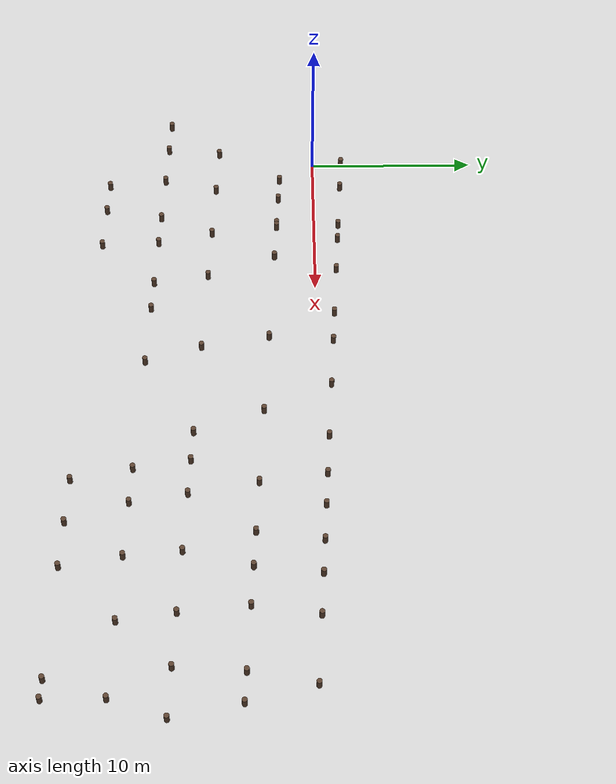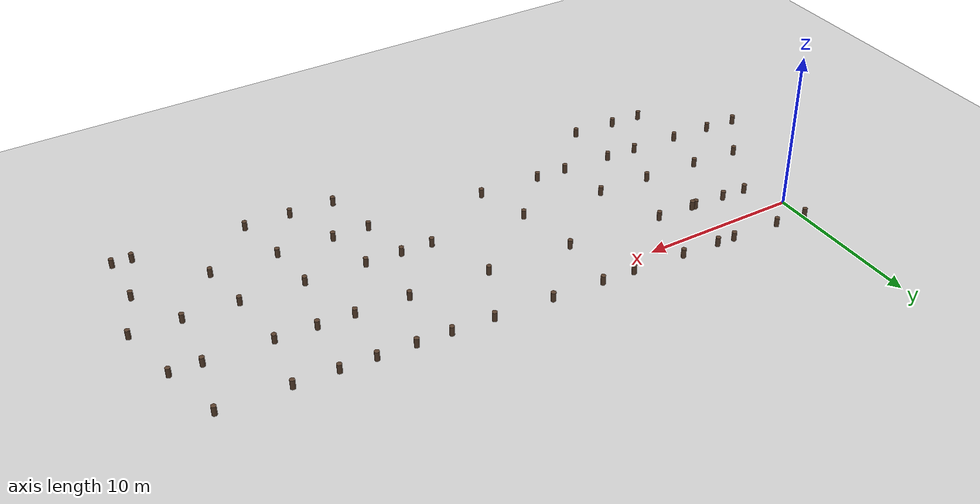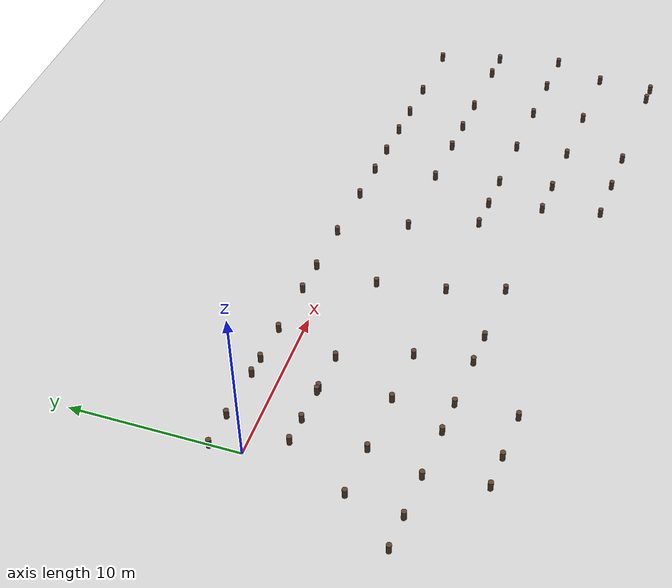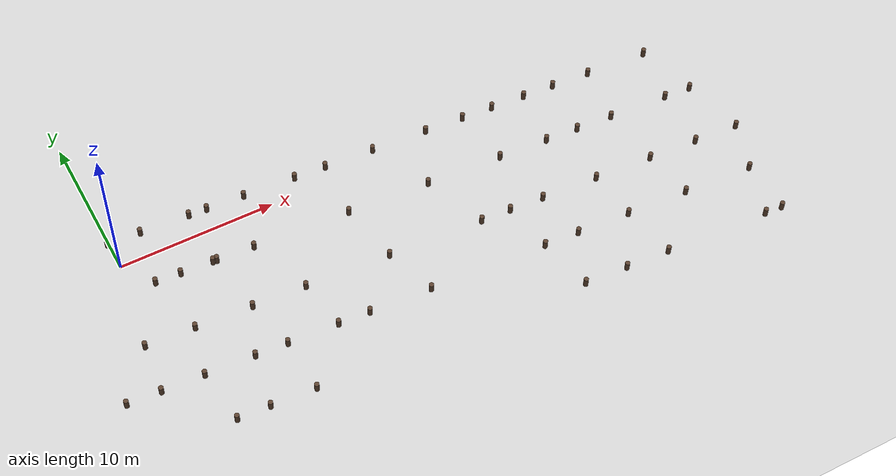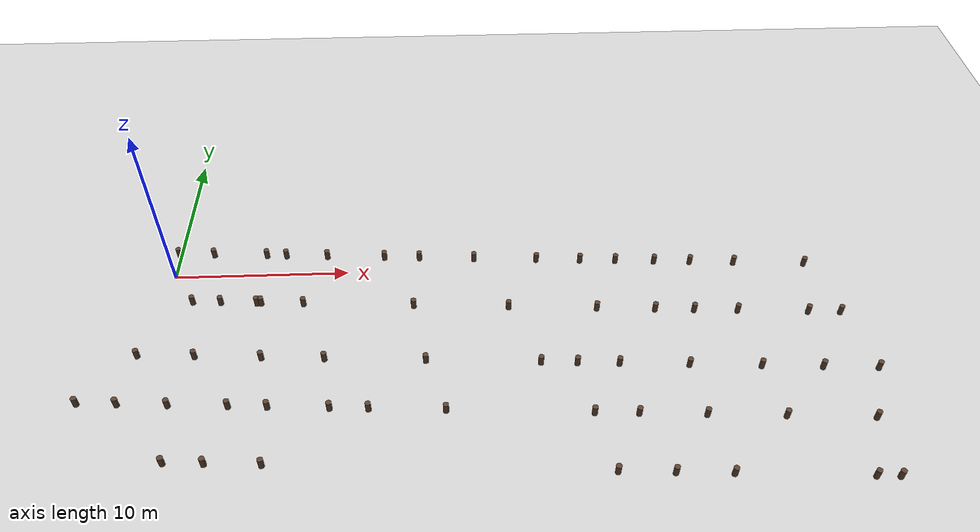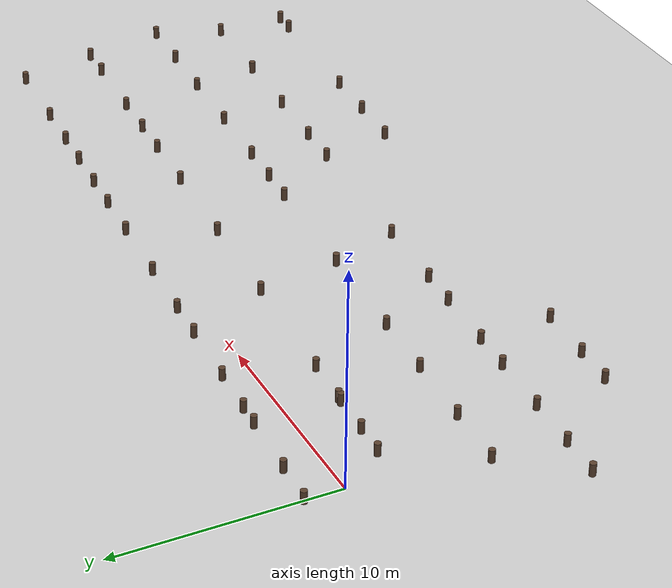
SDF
<?xml version="1.0"?>
<sdf version="1.6">
  <world name="orchard_world">
    <include>
      <uri>model://sun</uri>
    </include>

    <include>
      <uri>model://ground_plane</uri>
    </include>

    <!-- Trees: 61 includes of model://tree_trunk -->
    <include>
      <uri>model://tree_trunk</uri>
      <name>tree_0000</name>
      <pose>37.405994 -14.860530 0 0 0 0</pose>
    </include>
    <include>
      <uri>model://tree_trunk</uri>
      <name>tree_0001</name>
      <pose>36.251740 -14.794788 0 0 0 0</pose>
    </include>
    <include>
      <uri>model://tree_trunk</uri>
      <name>tree_0002</name>
      <pose>29.473898 -14.408754 0 0 0 0</pose>
    </include>
    <include>
      <uri>model://tree_trunk</uri>
      <name>tree_0003</name>
      <pose>26.651340 -14.247994 0 0 0 0</pose>
    </include>
    <include>
      <uri>model://tree_trunk</uri>
      <name>tree_0004</name>
      <pose>23.872522 -14.089725 0 0 0 0</pose>
    </include>
    <include>
      <uri>model://tree_trunk</uri>
      <name>tree_0005</name>
      <pose>6.632353 -13.107804 0 0 0 0</pose>
    </include>
    <include>
      <uri>model://tree_trunk</uri>
      <name>tree_0006</name>
      <pose>3.813157 -12.947236 0 0 0 0</pose>
    </include>
    <include>
      <uri>model://tree_trunk</uri>
      <name>tree_0007</name>
      <pose>1.792529 -12.832150 0 0 0 0</pose>
    </include>
    <include>
      <uri>model://tree_trunk</uri>
      <name>tree_0008</name>
      <pose>37.391811 -11.390374 0 0 0 0</pose>
    </include>
    <include>
      <uri>model://tree_trunk</uri>
      <name>tree_0009</name>
      <pose>32.862915 -11.132429 0 0 0 0</pose>
    </include>
    <include>
      <uri>model://tree_trunk</uri>
      <name>tree_0010</name>
      <pose>28.853966 -10.904098 0 0 0 0</pose>
    </include>
    <include>
      <uri>model://tree_trunk</uri>
      <name>tree_0011</name>
      <pose>25.411882 -10.708053 0 0 0 0</pose>
    </include>
    <include>
      <uri>model://tree_trunk</uri>
      <name>tree_0012</name>
      <pose>23.157860 -10.579674 0 0 0 0</pose>
    </include>
    <include>
      <uri>model://tree_trunk</uri>
      <name>tree_0013</name>
      <pose>15.610937 -10.149836 0 0 0 0</pose>
    </include>
    <include>
      <uri>model://tree_trunk</uri>
      <name>tree_0014</name>
      <pose>11.653235 -9.924423 0 0 0 0</pose>
    </include>
    <include>
      <uri>model://tree_trunk</uri>
      <name>tree_0015</name>
      <pose>9.662840 -9.811059 0 0 0 0</pose>
    </include>
    <include>
      <uri>model://tree_trunk</uri>
      <name>tree_0016</name>
      <pose>6.479774 -9.629766 0 0 0 0</pose>
    </include>
    <include>
      <uri>model://tree_trunk</uri>
      <name>tree_0017</name>
      <pose>4.461401 -9.514809 0 0 0 0</pose>
    </include>
    <include>
      <uri>model://tree_trunk</uri>
      <name>tree_0018</name>
      <pose>1.370597 -9.338771 0 0 0 0</pose>
    </include>
    <include>
      <uri>model://tree_trunk</uri>
      <name>tree_0019</name>
      <pose>-1.253677 -9.189304 0 0 0 0</pose>
    </include>
    <include>
      <uri>model://tree_trunk</uri>
      <name>tree_0020</name>
      <pose>-3.334988 -9.070763 0 0 0 0</pose>
    </include>
    <include>
      <uri>model://tree_trunk</uri>
      <name>tree_0021</name>
      <pose>38.550163 -8.207743 0 0 0 0</pose>
    </include>
    <include>
      <uri>model://tree_trunk</uri>
      <name>tree_0022</name>
      <pose>35.612579 -8.040432 0 0 0 0</pose>
    </include>
    <include>
      <uri>model://tree_trunk</uri>
      <name>tree_0023</name>
      <pose>32.372997 -7.855920 0 0 0 0</pose>
    </include>
    <include>
      <uri>model://tree_trunk</uri>
      <name>tree_0024</name>
      <pose>28.561665 -7.638844 0 0 0 0</pose>
    </include>
    <include>
      <uri>model://tree_trunk</uri>
      <name>tree_0025</name>
      <pose>24.855803 -7.427775 0 0 0 0</pose>
    </include>
    <include>
      <uri>model://tree_trunk</uri>
      <name>tree_0026</name>
      <pose>22.623945 -7.300659 0 0 0 0</pose>
    </include>
    <include>
      <uri>model://tree_trunk</uri>
      <name>tree_0027</name>
      <pose>20.688208 -7.190408 0 0 0 0</pose>
    </include>
    <include>
      <uri>model://tree_trunk</uri>
      <name>tree_0028</name>
      <pose>14.562399 -6.841510 0 0 0 0</pose>
    </include>
    <include>
      <uri>model://tree_trunk</uri>
      <name>tree_0029</name>
      <pose>9.141354 -6.532752 0 0 0 0</pose>
    </include>
    <include>
      <uri>model://tree_trunk</uri>
      <name>tree_0030</name>
      <pose>5.760499 -6.340194 0 0 0 0</pose>
    </include>
    <include>
      <uri>model://tree_trunk</uri>
      <name>tree_0031</name>
      <pose>2.178264 -6.136167 0 0 0 0</pose>
    </include>
    <include>
      <uri>model://tree_trunk</uri>
      <name>tree_0032</name>
      <pose>-0.902035 -5.960727 0 0 0 0</pose>
    </include>
    <include>
      <uri>model://tree_trunk</uri>
      <name>tree_0033</name>
      <pose>37.697475 -4.183941 0 0 0 0</pose>
    </include>
    <include>
      <uri>model://tree_trunk</uri>
      <name>tree_0034</name>
      <pose>35.905838 -4.081898 0 0 0 0</pose>
    </include>
    <include>
      <uri>model://tree_trunk</uri>
      <name>tree_0035</name>
      <pose>31.977093 -3.858134 0 0 0 0</pose>
    </include>
    <include>
      <uri>model://tree_trunk</uri>
      <name>tree_0036</name>
      <pose>29.551167 -3.719965 0 0 0 0</pose>
    </include>
    <include>
      <uri>model://tree_trunk</uri>
      <name>tree_0037</name>
      <pose>27.372627 -3.595885 0 0 0 0</pose>
    </include>
    <include>
      <uri>model://tree_trunk</uri>
      <name>tree_0038</name>
      <pose>24.119051 -3.410576 0 0 0 0</pose>
    </include>
    <include>
      <uri>model://tree_trunk</uri>
      <name>tree_0039</name>
      <pose>19.180853 -3.129319 0 0 0 0</pose>
    </include>
    <include>
      <uri>model://tree_trunk</uri>
      <name>tree_0040</name>
      <pose>13.850433 -2.825723 0 0 0 0</pose>
    </include>
    <include>
      <uri>model://tree_trunk</uri>
      <name>tree_0041</name>
      <pose>7.645126 -2.472297 0 0 0 0</pose>
    </include>
    <include>
      <uri>model://tree_trunk</uri>
      <name>tree_0042</name>
      <pose>5.258587 -2.336371 0 0 0 0</pose>
    </include>
    <include>
      <uri>model://tree_trunk</uri>
      <name>tree_0043</name>
      <pose>5.017618 -2.322646 0 0 0 0</pose>
    </include>
    <include>
      <uri>model://tree_trunk</uri>
      <name>tree_0044</name>
      <pose>2.972749 -2.206180 0 0 0 0</pose>
    </include>
    <include>
      <uri>model://tree_trunk</uri>
      <name>tree_0045</name>
      <pose>1.385030 -2.115751 0 0 0 0</pose>
    </include>
    <include>
      <uri>model://tree_trunk</uri>
      <name>tree_0046</name>
      <pose>36.680054 -0.287027 0 0 0 0</pose>
    </include>
    <include>
      <uri>model://tree_trunk</uri>
      <name>tree_0047</name>
      <pose>32.568104 -0.052830 0 0 0 0</pose>
    </include>
    <include>
      <uri>model://tree_trunk</uri>
      <name>tree_0048</name>
      <pose>30.013088 0.092693 0 0 0 0</pose>
    </include>
    <include>
      <uri>model://tree_trunk</uri>
      <name>tree_0049</name>
      <pose>27.918550 0.211988 0 0 0 0</pose>
    </include>
    <include>
      <uri>model://tree_trunk</uri>
      <name>tree_0050</name>
      <pose>25.647478 0.341338 0 0 0 0</pose>
    </include>
    <include>
      <uri>model://tree_trunk</uri>
      <name>tree_0051</name>
      <pose>23.573376 0.459469 0 0 0 0</pose>
    </include>
    <include>
      <uri>model://tree_trunk</uri>
      <name>tree_0052</name>
      <pose>21.006304 0.605678 0 0 0 0</pose>
    </include>
    <include>
      <uri>model://tree_trunk</uri>
      <name>tree_0053</name>
      <pose>17.343456 0.814297 0 0 0 0</pose>
    </include>
    <include>
      <uri>model://tree_trunk</uri>
      <name>tree_0054</name>
      <pose>14.129468 0.997351 0 0 0 0</pose>
    </include>
    <include>
      <uri>model://tree_trunk</uri>
      <name>tree_0055</name>
      <pose>12.071085 1.114587 0 0 0 0</pose>
    </include>
    <include>
      <uri>model://tree_trunk</uri>
      <name>tree_0056</name>
      <pose>8.696500 1.306788 0 0 0 0</pose>
    </include>
    <include>
      <uri>model://tree_trunk</uri>
      <name>tree_0057</name>
      <pose>6.276274 1.444633 0 0 0 0</pose>
    </include>
    <include>
      <uri>model://tree_trunk</uri>
      <name>tree_0058</name>
      <pose>5.122157 1.510366 0 0 0 0</pose>
    </include>
    <include>
      <uri>model://tree_trunk</uri>
      <name>tree_0059</name>
      <pose>1.996437 1.688392 0 0 0 0</pose>
    </include>
    <include>
      <uri>model://tree_trunk</uri>
      <name>tree_0060</name>
      <pose>-0.091906 1.807335 0 0 0 0</pose>
    </include>
  </world>
</sdf>

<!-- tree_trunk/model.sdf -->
<sdf version="1.6">
  <model name="tree_trunk">
    <static>true</static>
    <link name="link">
      <collision name="trunk_collision">
        <pose>0 0 0.30 0 0 0</pose>
        <geometry>
          <cylinder>
            <radius>0.15</radius>
            <length>0.60</length>
          </cylinder>
        </geometry>
      </collision>
      <visual name="trunk_visual">
        <pose>0 0 0.30 0 0 0</pose>
        <geometry>
          <cylinder>
            <radius>0.15</radius>
            <length>0.60</length>
          </cylinder>
        </geometry>
        <material>
          <ambient>0.25 0.18 0.12 1</ambient>
          <diffuse>0.35 0.25 0.18 1</diffuse>
        </material>
      </visual>
    </link>
  </model>
</sdf>
